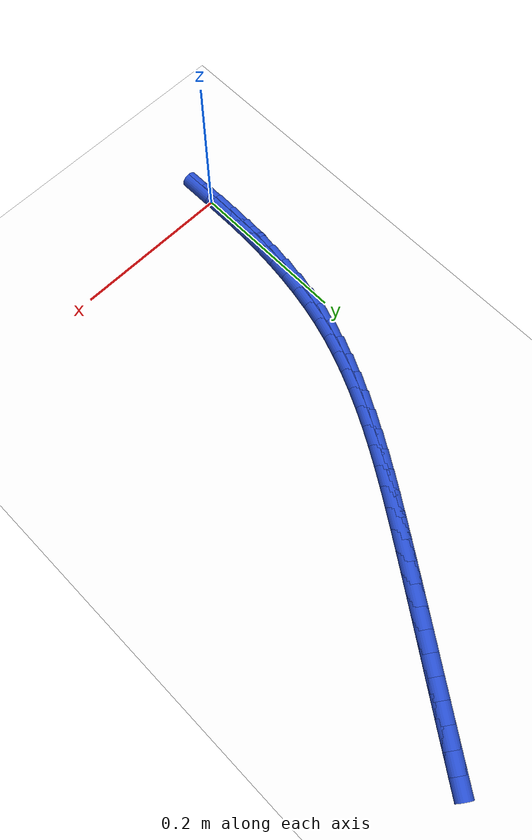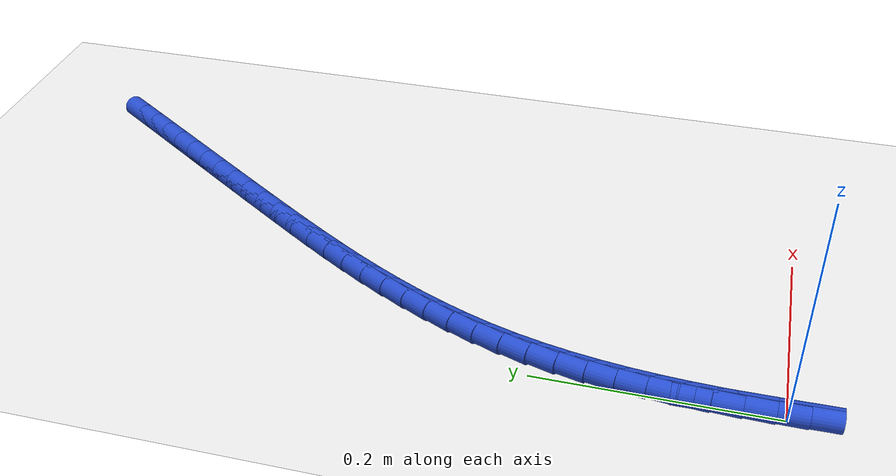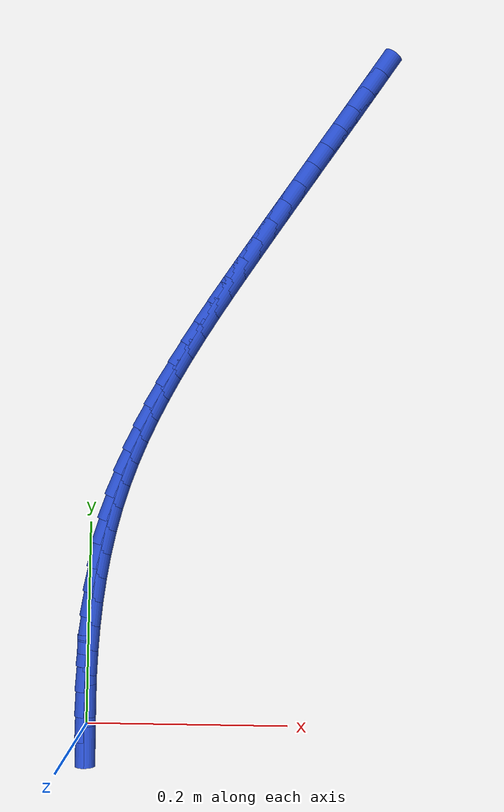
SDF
<sdf version="1.6">
 <world name="default">
  <model name="ground_plane">
   <static>1</static>
   <link name="link">
    <collision name="collision">
     <geometry><plane><normal>0 0 1</normal><size>100 100</size></plane></geometry>
     <surface><friction><ode><mu>100</mu><mu2>50</mu2></ode></friction></surface>
    </collision>
    <visual name="visual">
     <cast_shadows>0</cast_shadows>
     <geometry><plane><normal>0 0 1</normal><size>100 100</size></plane></geometry>
     <material>
      <script><uri>file://media/materials/scripts/gazebo.material</uri><name>Gazebo/WhiteGlow</name></script>
     </material>
    </visual>
   </link>
  </model>
  <model name="line">
   <link name="link_0">
    <pose>8.239936510889834e-18 4.163336342344337e-17 0.01 0 1.57 -1.5604847739984256</pose>
    <collision name="collision">
     <geometry><cylinder><radius>0.01</radius><length>0.08</length></cylinder></geometry>
    </collision>
    <visual name="visual">
     <material>
      <script><name>Gazebo/Blue</name><uri>file://media/materials/scripts/gazebo.material</uri></script>
     </material>
     <geometry><cylinder><radius>0.01</radius><length>0.08</length></cylinder></geometry>
    </visual>
   </link>
   <link name="link_1">
    <pose>-0.00025069984554152266 0.02431165945086034 0.01 0 1.57 1.5592620202173926</pose>
    <collision name="collision">
     <geometry><cylinder><radius>0.01</radius><length>0.08</length></cylinder></geometry>
    </collision>
    <visual name="visual">
     <material>
      <script><name>Gazebo/Blue</name><uri>file://media/materials/scripts/gazebo.material</uri></script>
     </material>
     <geometry><cylinder><radius>0.01</radius><length>0.08</length></cylinder></geometry>
    </visual>
   </link>
   <link name="link_2">
    <pose>3.0164865778178077e-05 0.04866095638405373 0.01 0 1.57 1.5345862038355789</pose>
    <collision name="collision">
     <geometry><cylinder><radius>0.01</radius><length>0.08</length></cylinder></geometry>
    </collision>
    <visual name="visual">
     <material>
      <script><name>Gazebo/Blue</name><uri>file://media/materials/scripts/gazebo.material</uri></script>
     </material>
     <geometry><cylinder><radius>0.01</radius><length>0.08</length></cylinder></geometry>
    </visual>
   </link>
   <link name="link_3">
    <pose>0.0009119169149197662 0.0730012945802726 0.01 0 1.57 1.5069763396968603</pose>
    <collision name="collision">
     <geometry><cylinder><radius>0.01</radius><length>0.08</length></cylinder></geometry>
    </collision>
    <visual name="visual">
     <material>
      <script><name>Gazebo/Blue</name><uri>file://media/materials/scripts/gazebo.material</uri></script>
     </material>
     <geometry><cylinder><radius>0.01</radius><length>0.08</length></cylinder></geometry>
    </visual>
   </link>
   <link name="link_4">
    <pose>0.0024638790828438928 0.09728607782020932 0.01 0 1.57 1.4763205357476048</pose>
    <collision name="collision">
     <geometry><cylinder><radius>0.01</radius><length>0.08</length></cylinder></geometry>
    </collision>
    <visual name="visual">
     <material>
      <script><name>Gazebo/Blue</name><uri>file://media/materials/scripts/gazebo.material</uri></script>
     </material>
     <geometry><cylinder><radius>0.01</radius><length>0.08</length></cylinder></geometry>
    </visual>
   </link>
   <link name="link_5">
    <pose>0.004755374150511214 0.12146870988455631 0.01 0 1.57 1.442505662867456</pose>
    <collision name="collision">
     <geometry><cylinder><radius>0.01</radius><length>0.08</length></cylinder></geometry>
    </collision>
    <visual name="visual">
     <material>
      <script><name>Gazebo/Blue</name><uri>file://media/materials/scripts/gazebo.material</uri></script>
     </material>
     <geometry><cylinder><radius>0.01</radius><length>0.08</length></cylinder></geometry>
    </visual>
   </link>
   <link name="link_6">
    <pose>0.007855724898882385 0.14550259455400597 0.01 0 1.57 1.4054256627517405</pose>
    <collision name="collision">
     <geometry><cylinder><radius>0.01</radius><length>0.08</length></cylinder></geometry>
    </collision>
    <visual name="visual">
     <material>
      <script><name>Gazebo/Blue</name><uri>file://media/materials/scripts/gazebo.material</uri></script>
     </material>
     <geometry><cylinder><radius>0.01</radius><length>0.08</length></cylinder></geometry>
    </visual>
   </link>
   <link name="link_7">
    <pose>0.011834254108918058 0.16934113560925065 0.01 0 1.57 1.3649918923019504</pose>
    <collision name="collision">
     <geometry><cylinder><radius>0.01</radius><length>0.08</length></cylinder></geometry>
    </collision>
    <visual name="visual">
     <material>
      <script><name>Gazebo/Blue</name><uri>file://media/materials/scripts/gazebo.material</uri></script>
     </material>
     <geometry><cylinder><radius>0.01</radius><length>0.08</length></cylinder></geometry>
    </visual>
   </link>
   <link name="link_8">
    <pose>0.016760284561578877 0.19293773683098275 0.01 0 1.57 1.3211456311322216</pose>
    <collision name="collision">
     <geometry><cylinder><radius>0.01</radius><length>0.08</length></cylinder></geometry>
    </collision>
    <visual name="visual">
     <material>
      <script><name>Gazebo/Blue</name><uri>file://media/materials/scripts/gazebo.material</uri></script>
     </material>
     <geometry><cylinder><radius>0.01</radius><length>0.08</length></cylinder></geometry>
    </visual>
   </link>
   <link name="link_9">
    <pose>0.02270313903782551 0.21624580199989474 0.01 0 1.57 1.273939900634041</pose>
    <collision name="collision">
     <geometry><cylinder><radius>0.01</radius><length>0.08</length></cylinder></geometry>
    </collision>
    <visual name="visual">
     <material>
      <script><name>Gazebo/Blue</name><uri>file://media/materials/scripts/gazebo.material</uri></script>
     </material>
     <geometry><cylinder><radius>0.01</radius><length>0.08</length></cylinder></geometry>
    </visual>
   </link>
   <link name="link_10">
    <pose>0.02973062624675743 0.23921931411991565 0.01 0 1.57 1.2264510314620878</pose>
    <collision name="collision">
     <geometry><cylinder><radius>0.01</radius><length>0.08</length></cylinder></geometry>
    </collision>
    <visual name="visual">
     <material>
      <script><name>Gazebo/Blue</name><uri>file://media/materials/scripts/gazebo.material</uri></script>
     </material>
     <geometry><cylinder><radius>0.01</radius><length>0.08</length></cylinder></geometry>
    </visual>
   </link>
   <link name="link_11">
    <pose>0.0378425423900538 0.261838275055571 0.01 0 1.57 1.1829624203381641</pose>
    <collision name="collision">
     <geometry><cylinder><radius>0.01</radius><length>0.08</length></cylinder></geometry>
    </collision>
    <visual name="visual">
     <material>
      <script><name>Gazebo/Blue</name><uri>file://media/materials/scripts/gazebo.material</uri></script>
     </material>
     <geometry><cylinder><radius>0.01</radius><length>0.08</length></cylinder></geometry>
    </visual>
   </link>
   <link name="link_12">
    <pose>0.04694463993999588 0.2841186640346382 0.01 0 1.57 1.1438245514091114</pose>
    <collision name="collision">
     <geometry><cylinder><radius>0.01</radius><length>0.08</length></cylinder></geometry>
    </collision>
    <visual name="visual">
     <material>
      <script><name>Gazebo/Blue</name><uri>file://media/materials/scripts/gazebo.material</uri></script>
     </material>
     <geometry><cylinder><radius>0.01</radius><length>0.08</length></cylinder></geometry>
    </visual>
   </link>
   <link name="link_13">
    <pose>0.05693577904941704 0.3060790970101928 0.01 0 1.57 1.1090159330003566</pose>
    <collision name="collision">
     <geometry><cylinder><radius>0.01</radius><length>0.08</length></cylinder></geometry>
    </collision>
    <visual name="visual">
     <material>
      <script><name>Gazebo/Blue</name><uri>file://media/materials/scripts/gazebo.material</uri></script>
     </material>
     <geometry><cylinder><radius>0.01</radius><length>0.08</length></cylinder></geometry>
    </visual>
   </link>
   <link name="link_14">
    <pose>0.06771481987115063 0.32773818993531045 0.01 0 1.57 1.0784719921911587</pose>
    <collision name="collision">
     <geometry><cylinder><radius>0.01</radius><length>0.08</length></cylinder></geometry>
    </collision>
    <visual name="visual">
     <material>
      <script><name>Gazebo/Blue</name><uri>file://media/materials/scripts/gazebo.material</uri></script>
     </material>
     <geometry><cylinder><radius>0.01</radius><length>0.08</length></cylinder></geometry>
    </visual>
   </link>
   <link name="link_15">
    <pose>0.07918062255802999 0.3491145587630667 0.01 0 1.57 1.0521046699254197</pose>
    <collision name="collision">
     <geometry><cylinder><radius>0.01</radius><length>0.08</length></cylinder></geometry>
    </collision>
    <visual name="visual">
     <material>
      <script><name>Gazebo/Blue</name><uri>file://media/materials/scripts/gazebo.material</uri></script>
     </material>
     <geometry><cylinder><radius>0.01</radius><length>0.08</length></cylinder></geometry>
    </visual>
   </link>
   <link name="link_16">
    <pose>0.09123204726288842 0.37022681944653696 0.01 0 1.57 1.0298186468648656</pose>
    <collision name="collision">
     <geometry><cylinder><radius>0.01</radius><length>0.08</length></cylinder></geometry>
    </collision>
    <visual name="visual">
     <material>
      <script><name>Gazebo/Blue</name><uri>file://media/materials/scripts/gazebo.material</uri></script>
     </material>
     <geometry><cylinder><radius>0.01</radius><length>0.08</length></cylinder></geometry>
    </visual>
   </link>
   <link name="link_17">
    <pose>0.10376795413855934 0.39109358793879706 0.01 0 1.57 1.011524299428808</pose>
    <collision name="collision">
     <geometry><cylinder><radius>0.01</radius><length>0.08</length></cylinder></geometry>
    </collision>
    <visual name="visual">
     <material>
      <script><name>Gazebo/Blue</name><uri>file://media/materials/scripts/gazebo.material</uri></script>
     </material>
     <geometry><cylinder><radius>0.01</radius><length>0.08</length></cylinder></geometry>
    </visual>
   </link>
   <link name="link_18">
    <pose>0.11668720333787597 0.41173348019292233 0.01 0 1.57 0.9971478171736029</pose>
    <collision name="collision">
     <geometry><cylinder><radius>0.01</radius><length>0.08</length></cylinder></geometry>
    </collision>
    <visual name="visual">
     <material>
      <script><name>Gazebo/Blue</name><uri>file://media/materials/scripts/gazebo.material</uri></script>
     </material>
     <geometry><cylinder><radius>0.01</radius><length>0.08</length></cylinder></geometry>
    </visual>
   </link>
   <link name="link_19">
    <pose>0.12988865501367183 0.43216511216198866 0.01 0 1.57 0.9866390414312071</pose>
    <collision name="collision">
     <geometry><cylinder><radius>0.01</radius><length>0.08</length></cylinder></geometry>
    </collision>
    <visual name="visual">
     <material>
      <script><name>Gazebo/Blue</name><uri>file://media/materials/scripts/gazebo.material</uri></script>
     </material>
     <geometry><cylinder><radius>0.01</radius><length>0.08</length></cylinder></geometry>
    </visual>
   </link>
   <link name="link_20">
    <pose>0.14327116931878012 0.45240709979907134 0.01 0 1.57 0.9799775833858296</pose>
    <collision name="collision">
     <geometry><cylinder><radius>0.01</radius><length>0.08</length></cylinder></geometry>
    </collision>
    <visual name="visual">
     <material>
      <script><name>Gazebo/Blue</name><uri>file://media/materials/scripts/gazebo.material</uri></script>
     </material>
     <geometry><cylinder><radius>0.01</radius><length>0.08</length></cylinder></geometry>
    </visual>
   </link>
   <link name="link_21">
    <pose>0.15673360640603423 0.47247805905724605 0.01 0 1.57 0.9767106705080332</pose>
    <collision name="collision">
     <geometry><cylinder><radius>0.01</radius><length>0.08</length></cylinder></geometry>
    </collision>
    <visual name="visual">
     <material>
      <script><name>Gazebo/Blue</name><uri>file://media/materials/scripts/gazebo.material</uri></script>
     </material>
     <geometry><cylinder><radius>0.01</radius><length>0.08</length></cylinder></geometry>
    </visual>
   </link>
   <link name="link_22">
    <pose>0.17018978497747667 0.49239870154055243 0.01 0 1.57 0.9745750853264366</pose>
    <collision name="collision">
     <geometry><cylinder><radius>0.01</radius><length>0.08</length></cylinder></geometry>
    </collision>
    <visual name="visual">
     <material>
      <script><name>Gazebo/Blue</name><uri>file://media/materials/scripts/gazebo.material</uri></script>
     </material>
     <geometry><cylinder><radius>0.01</radius><length>0.08</length></cylinder></geometry>
    </visual>
   </link>
   <link name="link_23">
    <pose>0.18362704603289876 0.5122000391215921 0.01 0 1.57 0.9728841787584968</pose>
    <collision name="collision">
     <geometry><cylinder><radius>0.01</radius><length>0.08</length></cylinder></geometry>
    </collision>
    <visual name="visual">
     <material>
      <script><name>Gazebo/Blue</name><uri>file://media/materials/scripts/gazebo.material</uri></script>
     </material>
     <geometry><cylinder><radius>0.01</radius><length>0.08</length></cylinder></geometry>
    </visual>
   </link>
   <link name="link_24">
    <pose>0.19705528166166544 0.5319162430176296 0.01 0 1.57 0.9716492080914787</pose>
    <collision name="collision">
     <geometry><cylinder><radius>0.01</radius><length>0.08</length></cylinder></geometry>
    </collision>
    <visual name="visual">
     <material>
      <script><name>Gazebo/Blue</name><uri>file://media/materials/scripts/gazebo.material</uri></script>
     </material>
     <geometry><cylinder><radius>0.01</radius><length>0.08</length></cylinder></geometry>
    </visual>
   </link>
   <link name="link_25">
    <pose>0.2104843898975176 0.55158148527872 0.01 0 1.57 0.9708778305333526</pose>
    <collision name="collision">
     <geometry><cylinder><radius>0.01</radius><length>0.08</length></cylinder></geometry>
    </collision>
    <visual name="visual">
     <material>
      <script><name>Gazebo/Blue</name><uri>file://media/materials/scripts/gazebo.material</uri></script>
     </material>
     <geometry><cylinder><radius>0.01</radius><length>0.08</length></cylinder></geometry>
    </visual>
   </link>
   <link name="link_26">
    <pose>0.22392426877419597 0.5712299379549174 0.01 0 1.57 0.970573783664825</pose>
    <collision name="collision">
     <geometry><cylinder><radius>0.01</radius><length>0.08</length></cylinder></geometry>
    </collision>
    <visual name="visual">
     <material>
      <script><name>Gazebo/Blue</name><uri>file://media/materials/scripts/gazebo.material</uri></script>
     </material>
     <geometry><cylinder><radius>0.01</radius><length>0.08</length></cylinder></geometry>
    </visual>
   </link>
   <link name="link_27">
    <pose>0.23738481632544145 0.5908957730962775 0.01 0 1.57 0.9707368311062204</pose>
    <collision name="collision">
     <geometry><cylinder><radius>0.01</radius><length>0.08</length></cylinder></geometry>
    </collision>
    <visual name="visual">
     <material>
      <script><name>Gazebo/Blue</name><uri>file://media/materials/scripts/gazebo.material</uri></script>
     </material>
     <geometry><cylinder><radius>0.01</radius><length>0.08</length></cylinder></geometry>
    </visual>
   </link>
   <link name="link_28">
    <pose>0.25087593058499497 0.6106131627528549 0.01 0 1.57 0.9713627893692124</pose>
    <collision name="collision">
     <geometry><cylinder><radius>0.01</radius><length>0.08</length></cylinder></geometry>
    </collision>
    <visual name="visual">
     <material>
      <script><name>Gazebo/Blue</name><uri>file://media/materials/scripts/gazebo.material</uri></script>
     </material>
     <geometry><cylinder><radius>0.01</radius><length>0.08</length></cylinder></geometry>
    </visual>
   </link>
   <link name="link_29">
    <pose>0.2644075095865972 0.6304162789747041 0.01 0 1.57 0.9724436344190517</pose>
    <collision name="collision">
     <geometry><cylinder><radius>0.01</radius><length>0.08</length></cylinder></geometry>
    </collision>
    <visual name="visual">
     <material>
      <script><name>Gazebo/Blue</name><uri>file://media/materials/scripts/gazebo.material</uri></script>
     </material>
     <geometry><cylinder><radius>0.01</radius><length>0.08</length></cylinder></geometry>
    </visual>
   </link>
   <link name="link_30">
    <pose>0.27798945136398906 0.6503392938118804 0.01 0 1.57 0.9739676836178367</pose>
    <collision name="collision">
     <geometry><cylinder><radius>0.01</radius><length>0.08</length></cylinder></geometry>
    </collision>
    <visual name="visual">
     <material>
      <script><name>Gazebo/Blue</name><uri>file://media/materials/scripts/gazebo.material</uri></script>
     </material>
     <geometry><cylinder><radius>0.01</radius><length>0.08</length></cylinder></geometry>
    </visual>
   </link>
   <link name="link_270">
    <pose>7.15573433840433e-18 3.469446951953614e-17 0.01 0 1.57 -1.5599764902125342</pose>
    <collision name="collision">
     <geometry><cylinder><radius>0.01</radius><length>0.08</length></cylinder></geometry>
    </collision>
    <visual name="visual">
     <material>
      <script><name>Gazebo/Blue</name><uri>file://media/materials/scripts/gazebo.material</uri></script>
     </material>
     <geometry><cylinder><radius>0.01</radius><length>0.08</length></cylinder></geometry>
    </visual>
   </link>
   <link name="link_271">
    <pose>-0.0002631531547543091 0.024320412203777793 0.01 0 1.57 1.5628617512336522</pose>
    <collision name="collision">
     <geometry><cylinder><radius>0.01</radius><length>0.08</length></cylinder></geometry>
    </collision>
    <visual name="visual">
     <material>
      <script><name>Gazebo/Blue</name><uri>file://media/materials/scripts/gazebo.material</uri></script>
     </material>
     <geometry><cylinder><radius>0.01</radius><length>0.08</length></cylinder></geometry>
    </visual>
   </link>
   <link name="link_272">
    <pose>-6.946160792408894e-05 0.048730978407391094 0.01 0 1.57 -1.5693709180887632</pose>
    <collision name="collision">
     <geometry><cylinder><radius>0.01</radius><length>0.08</length></cylinder></geometry>
    </collision>
    <visual name="visual">
     <material>
      <script><name>Gazebo/Blue</name><uri>file://media/materials/scripts/gazebo.material</uri></script>
     </material>
     <geometry><cylinder><radius>0.01</radius><length>0.08</length></cylinder></geometry>
    </visual>
   </link>
  </model>
 </world>
</sdf>
